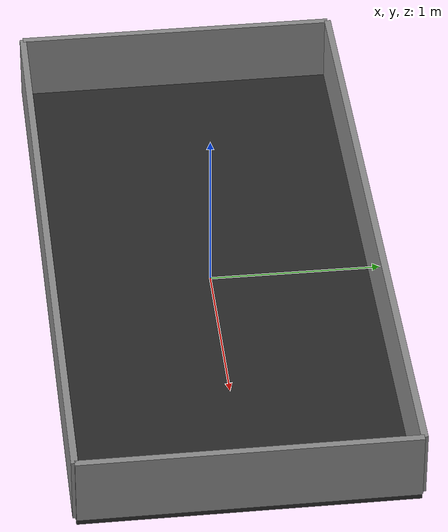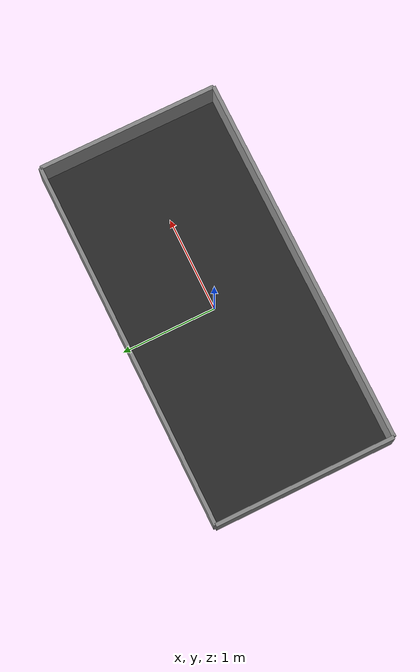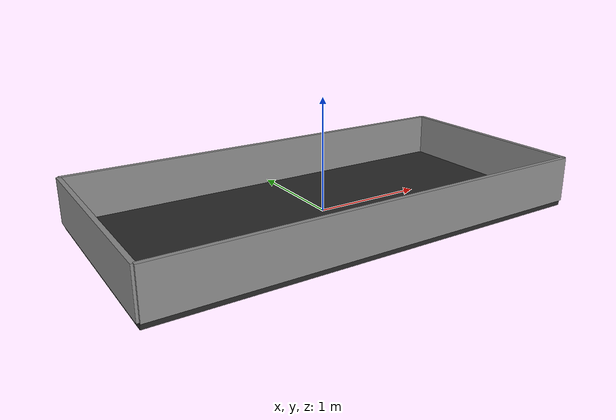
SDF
<sdf version="1.6">
 <world name="aufgabe04_stands">
  <model name="arena_floor">
   <static>true</static>
   <link name="floor_link">
    <visual name="floor_visual">
     <pose>0 0 -0.025 0 0 0</pose>
     <geometry><box><size>3.9 1.898 0.05</size></box></geometry>
     <material>
      <ambient>0.16 0.16 0.16 1</ambient>
      <diffuse>0.16 0.16 0.16 1</diffuse>
      <specular>0.08 0.08 0.08 1</specular>
     </material>
    </visual>
    <collision name="floor_collision">
     <pose>0 0 -0.025 0 0 0</pose>
     <geometry><box><size>3.9 1.898 0.05</size></box></geometry>
    </collision>
   </link>
  </model>
  <model name="arena_walls">
   <static>true</static>
   <link name="walls_link">
    <visual name="wall_left">
     <pose>-1.950000 0.000000 0.200000 0 0 0.000000</pose>
     <geometry><box><size>0.040000 1.898000 0.400000</size></box></geometry>
     <material>
      <ambient>0.55 0.55 0.55 1</ambient>
      <diffuse>0.55 0.55 0.55 1</diffuse>
      <specular>0.08 0.08 0.08 1</specular>
     </material>
    </visual>
    <visual name="wall_right">
     <pose>1.950000 0.000000 0.200000 0 0 0.000000</pose>
     <geometry><box><size>0.040000 1.898000 0.400000</size></box></geometry>
     <material>
      <ambient>0.55 0.55 0.55 1</ambient>
      <diffuse>0.55 0.55 0.55 1</diffuse>
      <specular>0.08 0.08 0.08 1</specular>
     </material>
    </visual>
    <visual name="wall_front">
     <pose>0.000000 -0.949000 0.200000 0 0 0.000000</pose>
     <geometry><box><size>3.900000 0.040000 0.400000</size></box></geometry>
     <material>
      <ambient>0.55 0.55 0.55 1</ambient>
      <diffuse>0.55 0.55 0.55 1</diffuse>
      <specular>0.08 0.08 0.08 1</specular>
     </material>
    </visual>
    <visual name="wall_back">
     <pose>0.000000 0.949000 0.200000 0 0 0.000000</pose>
     <geometry><box><size>3.900000 0.040000 0.400000</size></box></geometry>
     <material>
      <ambient>0.55 0.55 0.55 1</ambient>
      <diffuse>0.55 0.55 0.55 1</diffuse>
      <specular>0.08 0.08 0.08 1</specular>
     </material>
    </visual>
    <collision name="wall_left">
     <pose>-1.950000 0.000000 0.200000 0 0 0.000000</pose>
     <geometry><box><size>0.040000 1.898000 0.400000</size></box></geometry>
    </collision>
    <collision name="wall_right">
     <pose>1.950000 0.000000 0.200000 0 0 0.000000</pose>
     <geometry><box><size>0.040000 1.898000 0.400000</size></box></geometry>
    </collision>
    <collision name="wall_front">
     <pose>0.000000 -0.949000 0.200000 0 0 0.000000</pose>
     <geometry><box><size>3.900000 0.040000 0.400000</size></box></geometry>
    </collision>
    <collision name="wall_back">
     <pose>0.000000 0.949000 0.200000 0 0 0.000000</pose>
     <geometry><box><size>3.900000 0.040000 0.400000</size></box></geometry>
    </collision>
   </link>
  </model>
 </world>
</sdf>
